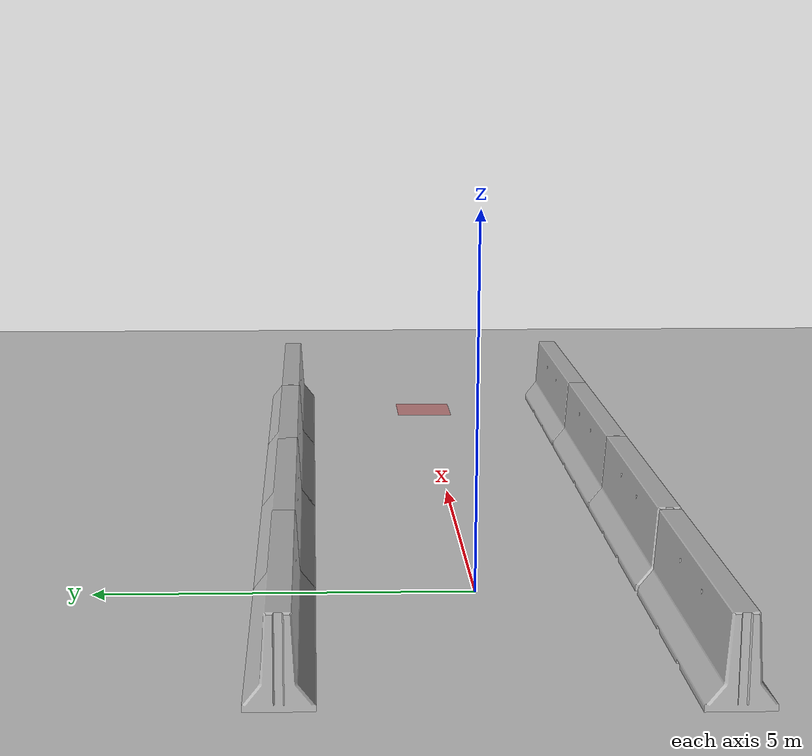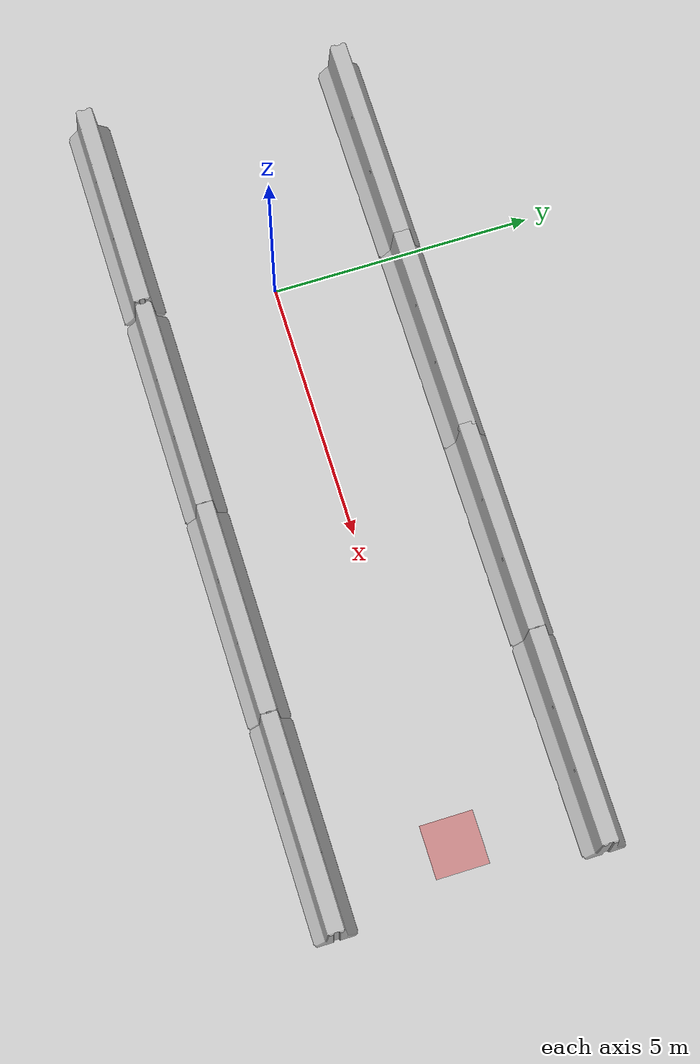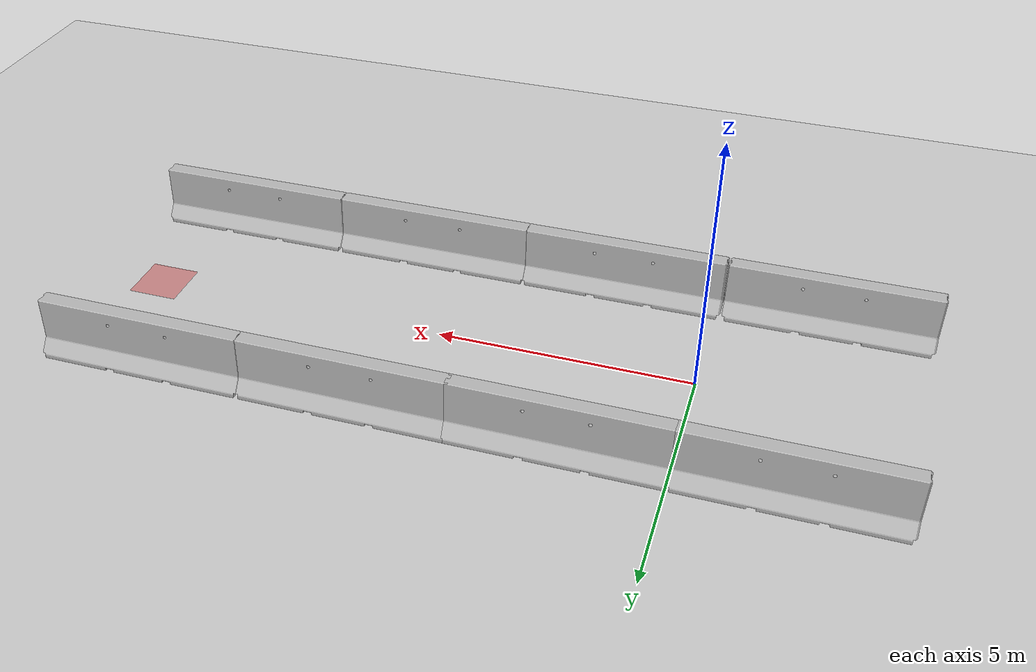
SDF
<?xml version="1.0" ?>
<sdf version="1.4">
  <world name="default">
    <!-- A global light source -->
    <include>
      <uri>model://sun</uri>
    </include>
    <!-- A ground plane-->
    <include>
      <uri>model://ground_plane</uri>
    </include>
    <!-- Own physics settings to speed up simulation -->
    <physics type='ode'>
      <max_step_size>0.01</max_step_size>
      <real_time_factor>1</real_time_factor>
      <real_time_update_rate>100</real_time_update_rate>
      <ode>
        <solver>
          <type>world</type>
        </solver>
        <constraints>
          <contact_max_correcting_vel>0.1</contact_max_correcting_vel>
          <contact_surface_layer>0.0001</contact_surface_layer>
        </constraints>
      </ode>
    </physics>
    <gravity>0.0 0.0 -9.81</gravity>

    <model name='goal'>
      <static>1</static>
      <pose frame=''>11 0 0 0 -0 0</pose>
      <link name='link'>
        <visual name='visual'>
          <geometry>
            <box>
              <size>1 1 0.001</size>
            </box>
          </geometry>
          <transparency>0.6</transparency>
          <material>
            <script>
              <name>Gazebo/Red</name>
              <uri>file://media/materials/scripts/gazebo.material</uri>
            </script>
          </material>
        </visual>
        <self_collide>0</self_collide>
        <kinematic>0</kinematic>
        <gravity>1</gravity>
      </link>
    </model>
<model name='jersey_barrier'>
      <static>1</static>
      <link name='link'>
        <visual name='visual'>
          <geometry>
            <mesh>
              <uri>model://jersey_barrier/meshes/jersey_barrier.dae</uri>
              <scale>1 1 1</scale>
            </mesh>
          </geometry>
        </visual>
        <collision name='upright'>
          <pose frame=''>0 0 0.5715 0 -0 0</pose>
          <geometry>
            <box>
              <size>4.06542 0.3063 1.143</size>
            </box>
          </geometry>
          <max_contacts>10</max_contacts>
          <surface>
            <contact>
              <ode/>
            </contact>
            <bounce/>
            <friction>
              <torsional>
                <ode/>
              </torsional>
              <ode/>
            </friction>
          </surface>
        </collision>
        <collision name='base'>
          <pose frame=''>0 0 0.032258 0 -0 0</pose>
          <geometry>
            <box>
              <size>4.06542 0.8107 0.064516</size>
            </box>
          </geometry>
          <max_contacts>10</max_contacts>
          <surface>
            <contact>
              <ode/>
            </contact>
            <bounce/>
            <friction>
              <torsional>
                <ode/>
              </torsional>
              <ode/>
            </friction>
          </surface>
        </collision>
        <collision name='base2'>
          <pose frame=''>0 0 0.1 0 -0 0</pose>
          <geometry>
            <box>
              <size>4.06542 0.65 0.1</size>
            </box>
          </geometry>
          <max_contacts>10</max_contacts>
          <surface>
            <contact>
              <ode/>
            </contact>
            <bounce/>
            <friction>
              <torsional>
                <ode/>
              </torsional>
              <ode/>
            </friction>
          </surface>
        </collision>
        <collision name='base3'>
          <pose frame=''>0 0 0.2 0 -0 0</pose>
          <geometry>
            <box>
              <size>4.06542 0.5 0.1</size>
            </box>
          </geometry>
          <max_contacts>10</max_contacts>
          <surface>
            <contact>
              <ode/>
            </contact>
            <bounce/>
            <friction>
              <torsional>
                <ode/>
              </torsional>
              <ode/>
            </friction>
          </surface>
        </collision>
        <collision name='left-angle'>
          <pose frame=''>0 -0.224 0.2401 0.9 -0 0</pose>
          <geometry>
            <box>
              <size>4.06542 0.5 0.064516</size>
            </box>
          </geometry>
          <max_contacts>10</max_contacts>
          <surface>
            <contact>
              <ode/>
            </contact>
            <bounce/>
            <friction>
              <torsional>
                <ode/>
              </torsional>
              <ode/>
            </friction>
          </surface>
        </collision>
        <collision name='right-angle'>
          <pose frame=''>0 0.224 0.2401 -0.9 0 0</pose>
          <geometry>
            <box>
              <size>4.06542 0.5 0.064516</size>
            </box>
          </geometry>
          <max_contacts>10</max_contacts>
          <surface>
            <contact>
              <ode/>
            </contact>
            <bounce/>
            <friction>
              <torsional>
                <ode/>
              </torsional>
              <ode/>
            </friction>
          </surface>
        </collision>
        <self_collide>0</self_collide>
        <kinematic>0</kinematic>
        <gravity>1</gravity>
      </link>
      <pose frame=''>1.9321 -2.5 0 0 -0 0</pose>
    </model>
    <model name='jersey_barrier_0'>
      <static>1</static>
      <link name='link'>
        <visual name='visual'>
          <geometry>
            <mesh>
              <uri>model://jersey_barrier/meshes/jersey_barrier.dae</uri>
              <scale>1 1 1</scale>
            </mesh>
          </geometry>
        </visual>
        <collision name='upright'>
          <pose frame=''>0 0 0.5715 0 -0 0</pose>
          <geometry>
            <box>
              <size>4.06542 0.3063 1.143</size>
            </box>
          </geometry>
          <max_contacts>10</max_contacts>
          <surface>
            <contact>
              <ode/>
            </contact>
            <bounce/>
            <friction>
              <torsional>
                <ode/>
              </torsional>
              <ode/>
            </friction>
          </surface>
        </collision>
        <collision name='base'>
          <pose frame=''>0 0 0.032258 0 -0 0</pose>
          <geometry>
            <box>
              <size>4.06542 0.8107 0.064516</size>
            </box>
          </geometry>
          <max_contacts>10</max_contacts>
          <surface>
            <contact>
              <ode/>
            </contact>
            <bounce/>
            <friction>
              <torsional>
                <ode/>
              </torsional>
              <ode/>
            </friction>
          </surface>
        </collision>
        <collision name='base2'>
          <pose frame=''>0 0 0.1 0 -0 0</pose>
          <geometry>
            <box>
              <size>4.06542 0.65 0.1</size>
            </box>
          </geometry>
          <max_contacts>10</max_contacts>
          <surface>
            <contact>
              <ode/>
            </contact>
            <bounce/>
            <friction>
              <torsional>
                <ode/>
              </torsional>
              <ode/>
            </friction>
          </surface>
        </collision>
        <collision name='base3'>
          <pose frame=''>0 0 0.2 0 -0 0</pose>
          <geometry>
            <box>
              <size>4.06542 0.5 0.1</size>
            </box>
          </geometry>
          <max_contacts>10</max_contacts>
          <surface>
            <contact>
              <ode/>
            </contact>
            <bounce/>
            <friction>
              <torsional>
                <ode/>
              </torsional>
              <ode/>
            </friction>
          </surface>
        </collision>
        <collision name='left-angle'>
          <pose frame=''>0 -0.224 0.2401 0.9 -0 0</pose>
          <geometry>
            <box>
              <size>4.06542 0.5 0.064516</size>
            </box>
          </geometry>
          <max_contacts>10</max_contacts>
          <surface>
            <contact>
              <ode/>
            </contact>
            <bounce/>
            <friction>
              <torsional>
                <ode/>
              </torsional>
              <ode/>
            </friction>
          </surface>
        </collision>
        <collision name='right-angle'>
          <pose frame=''>0 0.224 0.2401 -0.9 0 0</pose>
          <geometry>
            <box>
              <size>4.06542 0.5 0.064516</size>
            </box>
          </geometry>
          <max_contacts>10</max_contacts>
          <surface>
            <contact>
              <ode/>
            </contact>
            <bounce/>
            <friction>
              <torsional>
                <ode/>
              </torsional>
              <ode/>
            </friction>
          </surface>
        </collision>
        <self_collide>0</self_collide>
        <kinematic>0</kinematic>
        <gravity>1</gravity>
      </link>
      <pose frame=''>-2.1672 -2.5 0 0 -0 0</pose>
    </model>
    <model name='jersey_barrier_1'>
      <static>1</static>
      <link name='link'>
        <visual name='visual'>
          <geometry>
            <mesh>
              <uri>model://jersey_barrier/meshes/jersey_barrier.dae</uri>
              <scale>1 1 1</scale>
            </mesh>
          </geometry>
        </visual>
        <collision name='upright'>
          <pose frame=''>0 0 0.5715 0 -0 0</pose>
          <geometry>
            <box>
              <size>4.06542 0.3063 1.143</size>
            </box>
          </geometry>
          <max_contacts>10</max_contacts>
          <surface>
            <contact>
              <ode/>
            </contact>
            <bounce/>
            <friction>
              <torsional>
                <ode/>
              </torsional>
              <ode/>
            </friction>
          </surface>
        </collision>
        <collision name='base'>
          <pose frame=''>0 0 0.032258 0 -0 0</pose>
          <geometry>
            <box>
              <size>4.06542 0.8107 0.064516</size>
            </box>
          </geometry>
          <max_contacts>10</max_contacts>
          <surface>
            <contact>
              <ode/>
            </contact>
            <bounce/>
            <friction>
              <torsional>
                <ode/>
              </torsional>
              <ode/>
            </friction>
          </surface>
        </collision>
        <collision name='base2'>
          <pose frame=''>0 0 0.1 0 -0 0</pose>
          <geometry>
            <box>
              <size>4.06542 0.65 0.1</size>
            </box>
          </geometry>
          <max_contacts>10</max_contacts>
          <surface>
            <contact>
              <ode/>
            </contact>
            <bounce/>
            <friction>
              <torsional>
                <ode/>
              </torsional>
              <ode/>
            </friction>
          </surface>
        </collision>
        <collision name='base3'>
          <pose frame=''>0 0 0.2 0 -0 0</pose>
          <geometry>
            <box>
              <size>4.06542 0.5 0.1</size>
            </box>
          </geometry>
          <max_contacts>10</max_contacts>
          <surface>
            <contact>
              <ode/>
            </contact>
            <bounce/>
            <friction>
              <torsional>
                <ode/>
              </torsional>
              <ode/>
            </friction>
          </surface>
        </collision>
        <collision name='left-angle'>
          <pose frame=''>0 -0.224 0.2401 0.9 -0 0</pose>
          <geometry>
            <box>
              <size>4.06542 0.5 0.064516</size>
            </box>
          </geometry>
          <max_contacts>10</max_contacts>
          <surface>
            <contact>
              <ode/>
            </contact>
            <bounce/>
            <friction>
              <torsional>
                <ode/>
              </torsional>
              <ode/>
            </friction>
          </surface>
        </collision>
        <collision name='right-angle'>
          <pose frame=''>0 0.224 0.2401 -0.9 0 0</pose>
          <geometry>
            <box>
              <size>4.06542 0.5 0.064516</size>
            </box>
          </geometry>
          <max_contacts>10</max_contacts>
          <surface>
            <contact>
              <ode/>
            </contact>
            <bounce/>
            <friction>
              <torsional>
                <ode/>
              </torsional>
              <ode/>
            </friction>
          </surface>
        </collision>
        <self_collide>0</self_collide>
        <kinematic>0</kinematic>
        <gravity>1</gravity>
      </link>
      <pose frame=''>5.9507 -2.5 0 0 -0 0</pose>
    </model>
    <model name='jersey_barrier_2'>
      <static>1</static>
      <link name='link'>
        <visual name='visual'>
          <geometry>
            <mesh>
              <uri>model://jersey_barrier/meshes/jersey_barrier.dae</uri>
              <scale>1 1 1</scale>
            </mesh>
          </geometry>
        </visual>
        <collision name='upright'>
          <pose frame=''>0 0 0.5715 0 -0 0</pose>
          <geometry>
            <box>
              <size>4.06542 0.3063 1.143</size>
            </box>
          </geometry>
          <max_contacts>10</max_contacts>
          <surface>
            <contact>
              <ode/>
            </contact>
            <bounce/>
            <friction>
              <torsional>
                <ode/>
              </torsional>
              <ode/>
            </friction>
          </surface>
        </collision>
        <collision name='base'>
          <pose frame=''>0 0 0.032258 0 -0 0</pose>
          <geometry>
            <box>
              <size>4.06542 0.8107 0.064516</size>
            </box>
          </geometry>
          <max_contacts>10</max_contacts>
          <surface>
            <contact>
              <ode/>
            </contact>
            <bounce/>
            <friction>
              <torsional>
                <ode/>
              </torsional>
              <ode/>
            </friction>
          </surface>
        </collision>
        <collision name='base2'>
          <pose frame=''>0 0 0.1 0 -0 0</pose>
          <geometry>
            <box>
              <size>4.06542 0.65 0.1</size>
            </box>
          </geometry>
          <max_contacts>10</max_contacts>
          <surface>
            <contact>
              <ode/>
            </contact>
            <bounce/>
            <friction>
              <torsional>
                <ode/>
              </torsional>
              <ode/>
            </friction>
          </surface>
        </collision>
        <collision name='base3'>
          <pose frame=''>0 0 0.2 0 -0 0</pose>
          <geometry>
            <box>
              <size>4.06542 0.5 0.1</size>
            </box>
          </geometry>
          <max_contacts>10</max_contacts>
          <surface>
            <contact>
              <ode/>
            </contact>
            <bounce/>
            <friction>
              <torsional>
                <ode/>
              </torsional>
              <ode/>
            </friction>
          </surface>
        </collision>
        <collision name='left-angle'>
          <pose frame=''>0 -0.224 0.2401 0.9 -0 0</pose>
          <geometry>
            <box>
              <size>4.06542 0.5 0.064516</size>
            </box>
          </geometry>
          <max_contacts>10</max_contacts>
          <surface>
            <contact>
              <ode/>
            </contact>
            <bounce/>
            <friction>
              <torsional>
                <ode/>
              </torsional>
              <ode/>
            </friction>
          </surface>
        </collision>
        <collision name='right-angle'>
          <pose frame=''>0 0.224 0.2401 -0.9 0 0</pose>
          <geometry>
            <box>
              <size>4.06542 0.5 0.064516</size>
            </box>
          </geometry>
          <max_contacts>10</max_contacts>
          <surface>
            <contact>
              <ode/>
            </contact>
            <bounce/>
            <friction>
              <torsional>
                <ode/>
              </torsional>
              <ode/>
            </friction>
          </surface>
        </collision>
        <self_collide>0</self_collide>
        <kinematic>0</kinematic>
        <gravity>1</gravity>
      </link>
      <pose frame=''>9.98487 -2.5 0 0 -0 0</pose>
    </model>
    <model name='jersey_barrier_3'>
      <static>1</static>
      <link name='link'>
        <visual name='visual'>
          <geometry>
            <mesh>
              <uri>model://jersey_barrier/meshes/jersey_barrier.dae</uri>
              <scale>1 1 1</scale>
            </mesh>
          </geometry>
        </visual>
        <collision name='upright'>
          <pose frame=''>0 0 0.5715 0 -0 0</pose>
          <geometry>
            <box>
              <size>4.06542 0.3063 1.143</size>
            </box>
          </geometry>
          <max_contacts>10</max_contacts>
          <surface>
            <contact>
              <ode/>
            </contact>
            <bounce/>
            <friction>
              <torsional>
                <ode/>
              </torsional>
              <ode/>
            </friction>
          </surface>
        </collision>
        <collision name='base'>
          <pose frame=''>0 0 0.032258 0 -0 0</pose>
          <geometry>
            <box>
              <size>4.06542 0.8107 0.064516</size>
            </box>
          </geometry>
          <max_contacts>10</max_contacts>
          <surface>
            <contact>
              <ode/>
            </contact>
            <bounce/>
            <friction>
              <torsional>
                <ode/>
              </torsional>
              <ode/>
            </friction>
          </surface>
        </collision>
        <collision name='base2'>
          <pose frame=''>0 0 0.1 0 -0 0</pose>
          <geometry>
            <box>
              <size>4.06542 0.65 0.1</size>
            </box>
          </geometry>
          <max_contacts>10</max_contacts>
          <surface>
            <contact>
              <ode/>
            </contact>
            <bounce/>
            <friction>
              <torsional>
                <ode/>
              </torsional>
              <ode/>
            </friction>
          </surface>
        </collision>
        <collision name='base3'>
          <pose frame=''>0 0 0.2 0 -0 0</pose>
          <geometry>
            <box>
              <size>4.06542 0.5 0.1</size>
            </box>
          </geometry>
          <max_contacts>10</max_contacts>
          <surface>
            <contact>
              <ode/>
            </contact>
            <bounce/>
            <friction>
              <torsional>
                <ode/>
              </torsional>
              <ode/>
            </friction>
          </surface>
        </collision>
        <collision name='left-angle'>
          <pose frame=''>0 -0.224 0.2401 0.9 -0 0</pose>
          <geometry>
            <box>
              <size>4.06542 0.5 0.064516</size>
            </box>
          </geometry>
          <max_contacts>10</max_contacts>
          <surface>
            <contact>
              <ode/>
            </contact>
            <bounce/>
            <friction>
              <torsional>
                <ode/>
              </torsional>
              <ode/>
            </friction>
          </surface>
        </collision>
        <collision name='right-angle'>
          <pose frame=''>0 0.224 0.2401 -0.9 0 0</pose>
          <geometry>
            <box>
              <size>4.06542 0.5 0.064516</size>
            </box>
          </geometry>
          <max_contacts>10</max_contacts>
          <surface>
            <contact>
              <ode/>
            </contact>
            <bounce/>
            <friction>
              <torsional>
                <ode/>
              </torsional>
              <ode/>
            </friction>
          </surface>
        </collision>
        <self_collide>0</self_collide>
        <kinematic>0</kinematic>
        <gravity>1</gravity>
      </link>
      <pose frame=''>1.95924 2.5 0 0 -0 0</pose>
    </model>
    <model name='jersey_barrier_4'>
      <static>1</static>
      <link name='link'>
        <visual name='visual'>
          <geometry>
            <mesh>
              <uri>model://jersey_barrier/meshes/jersey_barrier.dae</uri>
              <scale>1 1 1</scale>
            </mesh>
          </geometry>
        </visual>
        <collision name='upright'>
          <pose frame=''>0 0 0.5715 0 -0 0</pose>
          <geometry>
            <box>
              <size>4.06542 0.3063 1.143</size>
            </box>
          </geometry>
          <max_contacts>10</max_contacts>
          <surface>
            <contact>
              <ode/>
            </contact>
            <bounce/>
            <friction>
              <torsional>
                <ode/>
              </torsional>
              <ode/>
            </friction>
          </surface>
        </collision>
        <collision name='base'>
          <pose frame=''>0 0 0.032258 0 -0 0</pose>
          <geometry>
            <box>
              <size>4.06542 0.8107 0.064516</size>
            </box>
          </geometry>
          <max_contacts>10</max_contacts>
          <surface>
            <contact>
              <ode/>
            </contact>
            <bounce/>
            <friction>
              <torsional>
                <ode/>
              </torsional>
              <ode/>
            </friction>
          </surface>
        </collision>
        <collision name='base2'>
          <pose frame=''>0 0 0.1 0 -0 0</pose>
          <geometry>
            <box>
              <size>4.06542 0.65 0.1</size>
            </box>
          </geometry>
          <max_contacts>10</max_contacts>
          <surface>
            <contact>
              <ode/>
            </contact>
            <bounce/>
            <friction>
              <torsional>
                <ode/>
              </torsional>
              <ode/>
            </friction>
          </surface>
        </collision>
        <collision name='base3'>
          <pose frame=''>0 0 0.2 0 -0 0</pose>
          <geometry>
            <box>
              <size>4.06542 0.5 0.1</size>
            </box>
          </geometry>
          <max_contacts>10</max_contacts>
          <surface>
            <contact>
              <ode/>
            </contact>
            <bounce/>
            <friction>
              <torsional>
                <ode/>
              </torsional>
              <ode/>
            </friction>
          </surface>
        </collision>
        <collision name='left-angle'>
          <pose frame=''>0 -0.224 0.2401 0.9 -0 0</pose>
          <geometry>
            <box>
              <size>4.06542 0.5 0.064516</size>
            </box>
          </geometry>
          <max_contacts>10</max_contacts>
          <surface>
            <contact>
              <ode/>
            </contact>
            <bounce/>
            <friction>
              <torsional>
                <ode/>
              </torsional>
              <ode/>
            </friction>
          </surface>
        </collision>
        <collision name='right-angle'>
          <pose frame=''>0 0.224 0.2401 -0.9 0 0</pose>
          <geometry>
            <box>
              <size>4.06542 0.5 0.064516</size>
            </box>
          </geometry>
          <max_contacts>10</max_contacts>
          <surface>
            <contact>
              <ode/>
            </contact>
            <bounce/>
            <friction>
              <torsional>
                <ode/>
              </torsional>
              <ode/>
            </friction>
          </surface>
        </collision>
        <self_collide>0</self_collide>
        <kinematic>0</kinematic>
        <gravity>1</gravity>
      </link>
      <pose frame=''>-2.04077 2.5 0 0 -0 0</pose>
    </model>
    <model name='jersey_barrier_5'>
      <static>1</static>
      <link name='link'>
        <visual name='visual'>
          <geometry>
            <mesh>
              <uri>model://jersey_barrier/meshes/jersey_barrier.dae</uri>
              <scale>1 1 1</scale>
            </mesh>
          </geometry>
        </visual>
        <collision name='upright'>
          <pose frame=''>0 0 0.5715 0 -0 0</pose>
          <geometry>
            <box>
              <size>4.06542 0.3063 1.143</size>
            </box>
          </geometry>
          <max_contacts>10</max_contacts>
          <surface>
            <contact>
              <ode/>
            </contact>
            <bounce/>
            <friction>
              <torsional>
                <ode/>
              </torsional>
              <ode/>
            </friction>
          </surface>
        </collision>
        <collision name='base'>
          <pose frame=''>0 0 0.032258 0 -0 0</pose>
          <geometry>
            <box>
              <size>4.06542 0.8107 0.064516</size>
            </box>
          </geometry>
          <max_contacts>10</max_contacts>
          <surface>
            <contact>
              <ode/>
            </contact>
            <bounce/>
            <friction>
              <torsional>
                <ode/>
              </torsional>
              <ode/>
            </friction>
          </surface>
        </collision>
        <collision name='base2'>
          <pose frame=''>0 0 0.1 0 -0 0</pose>
          <geometry>
            <box>
              <size>4.06542 0.65 0.1</size>
            </box>
          </geometry>
          <max_contacts>10</max_contacts>
          <surface>
            <contact>
              <ode/>
            </contact>
            <bounce/>
            <friction>
              <torsional>
                <ode/>
              </torsional>
              <ode/>
            </friction>
          </surface>
        </collision>
        <collision name='base3'>
          <pose frame=''>0 0 0.2 0 -0 0</pose>
          <geometry>
            <box>
              <size>4.06542 0.5 0.1</size>
            </box>
          </geometry>
          <max_contacts>10</max_contacts>
          <surface>
            <contact>
              <ode/>
            </contact>
            <bounce/>
            <friction>
              <torsional>
                <ode/>
              </torsional>
              <ode/>
            </friction>
          </surface>
        </collision>
        <collision name='left-angle'>
          <pose frame=''>0 -0.224 0.2401 0.9 -0 0</pose>
          <geometry>
            <box>
              <size>4.06542 0.5 0.064516</size>
            </box>
          </geometry>
          <max_contacts>10</max_contacts>
          <surface>
            <contact>
              <ode/>
            </contact>
            <bounce/>
            <friction>
              <torsional>
                <ode/>
              </torsional>
              <ode/>
            </friction>
          </surface>
        </collision>
        <collision name='right-angle'>
          <pose frame=''>0 0.224 0.2401 -0.9 0 0</pose>
          <geometry>
            <box>
              <size>4.06542 0.5 0.064516</size>
            </box>
          </geometry>
          <max_contacts>10</max_contacts>
          <surface>
            <contact>
              <ode/>
            </contact>
            <bounce/>
            <friction>
              <torsional>
                <ode/>
              </torsional>
              <ode/>
            </friction>
          </surface>
        </collision>
        <self_collide>0</self_collide>
        <kinematic>0</kinematic>
        <gravity>1</gravity>
      </link>
      <pose frame=''>5.89605 2.5 0 0 -0 0</pose>
    </model>
    <model name='jersey_barrier_6'>
      <static>1</static>
      <link name='link'>
        <visual name='visual'>
          <geometry>
            <mesh>
              <uri>model://jersey_barrier/meshes/jersey_barrier.dae</uri>
              <scale>1 1 1</scale>
            </mesh>
          </geometry>
        </visual>
        <collision name='upright'>
          <pose frame=''>0 0 0.5715 0 -0 0</pose>
          <geometry>
            <box>
              <size>4.06542 0.3063 1.143</size>
            </box>
          </geometry>
          <max_contacts>10</max_contacts>
          <surface>
            <contact>
              <ode/>
            </contact>
            <bounce/>
            <friction>
              <torsional>
                <ode/>
              </torsional>
              <ode/>
            </friction>
          </surface>
        </collision>
        <collision name='base'>
          <pose frame=''>0 0 0.032258 0 -0 0</pose>
          <geometry>
            <box>
              <size>4.06542 0.8107 0.064516</size>
            </box>
          </geometry>
          <max_contacts>10</max_contacts>
          <surface>
            <contact>
              <ode/>
            </contact>
            <bounce/>
            <friction>
              <torsional>
                <ode/>
              </torsional>
              <ode/>
            </friction>
          </surface>
        </collision>
        <collision name='base2'>
          <pose frame=''>0 0 0.1 0 -0 0</pose>
          <geometry>
            <box>
              <size>4.06542 0.65 0.1</size>
            </box>
          </geometry>
          <max_contacts>10</max_contacts>
          <surface>
            <contact>
              <ode/>
            </contact>
            <bounce/>
            <friction>
              <torsional>
                <ode/>
              </torsional>
              <ode/>
            </friction>
          </surface>
        </collision>
        <collision name='base3'>
          <pose frame=''>0 0 0.2 0 -0 0</pose>
          <geometry>
            <box>
              <size>4.06542 0.5 0.1</size>
            </box>
          </geometry>
          <max_contacts>10</max_contacts>
          <surface>
            <contact>
              <ode/>
            </contact>
            <bounce/>
            <friction>
              <torsional>
                <ode/>
              </torsional>
              <ode/>
            </friction>
          </surface>
        </collision>
        <collision name='left-angle'>
          <pose frame=''>0 -0.224 0.2401 0.9 -0 0</pose>
          <geometry>
            <box>
              <size>4.06542 0.5 0.064516</size>
            </box>
          </geometry>
          <max_contacts>10</max_contacts>
          <surface>
            <contact>
              <ode/>
            </contact>
            <bounce/>
            <friction>
              <torsional>
                <ode/>
              </torsional>
              <ode/>
            </friction>
          </surface>
        </collision>
        <collision name='right-angle'>
          <pose frame=''>0 0.224 0.2401 -0.9 0 0</pose>
          <geometry>
            <box>
              <size>4.06542 0.5 0.064516</size>
            </box>
          </geometry>
          <max_contacts>10</max_contacts>
          <surface>
            <contact>
              <ode/>
            </contact>
            <bounce/>
            <friction>
              <torsional>
                <ode/>
              </torsional>
              <ode/>
            </friction>
          </surface>
        </collision>
        <self_collide>0</self_collide>
        <kinematic>0</kinematic>
        <gravity>1</gravity>
      </link>
      <pose frame=''>9.91959 2.5 0 0 -0 0</pose>
    </model>
  </world>
</sdf>
